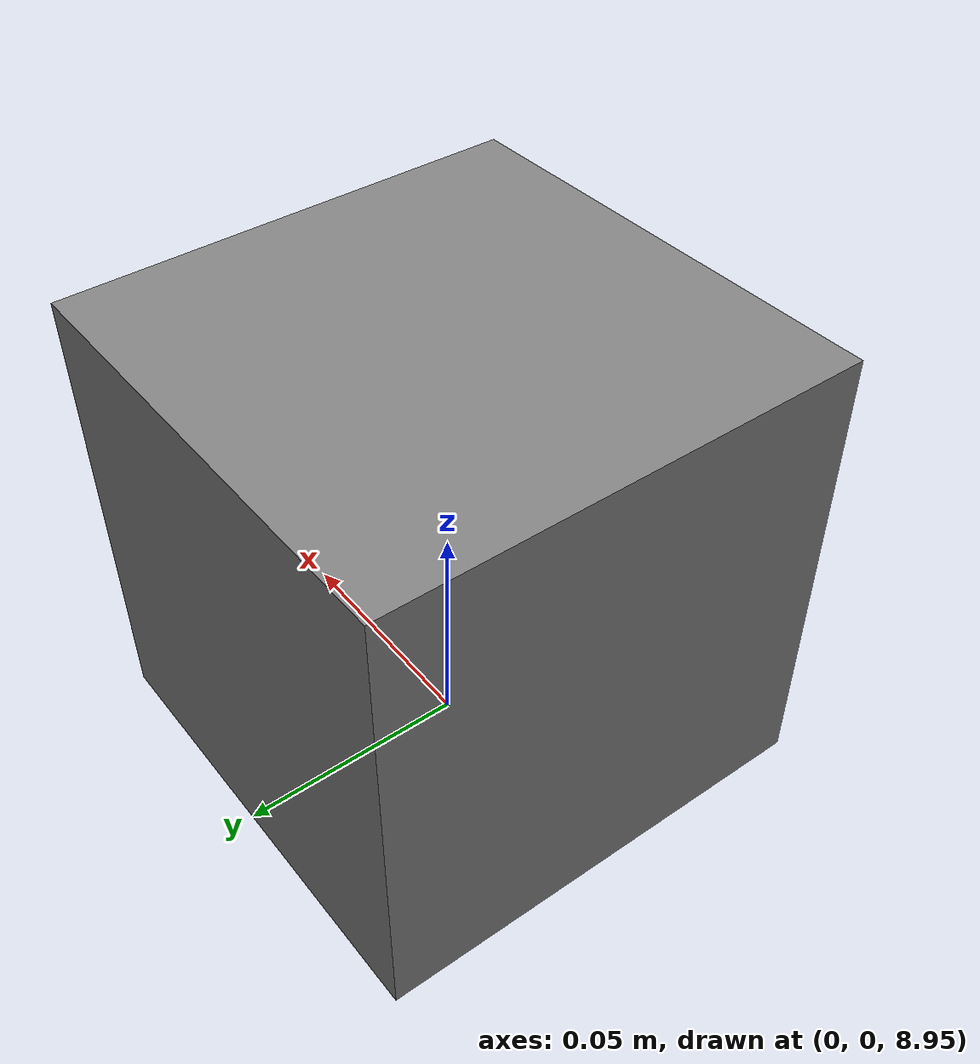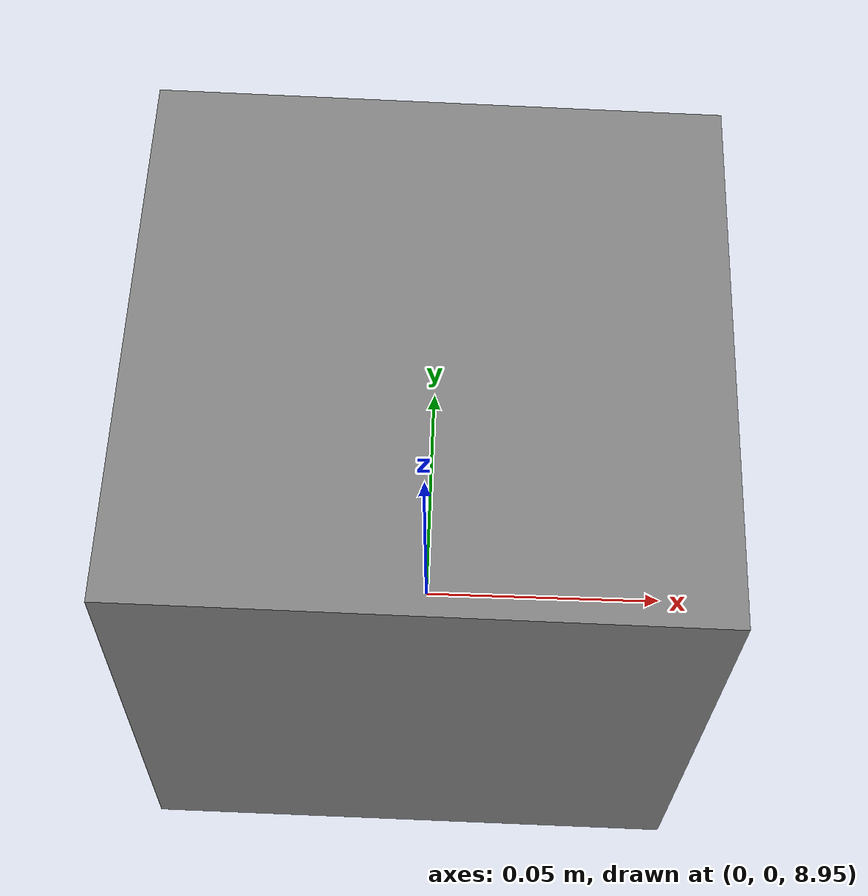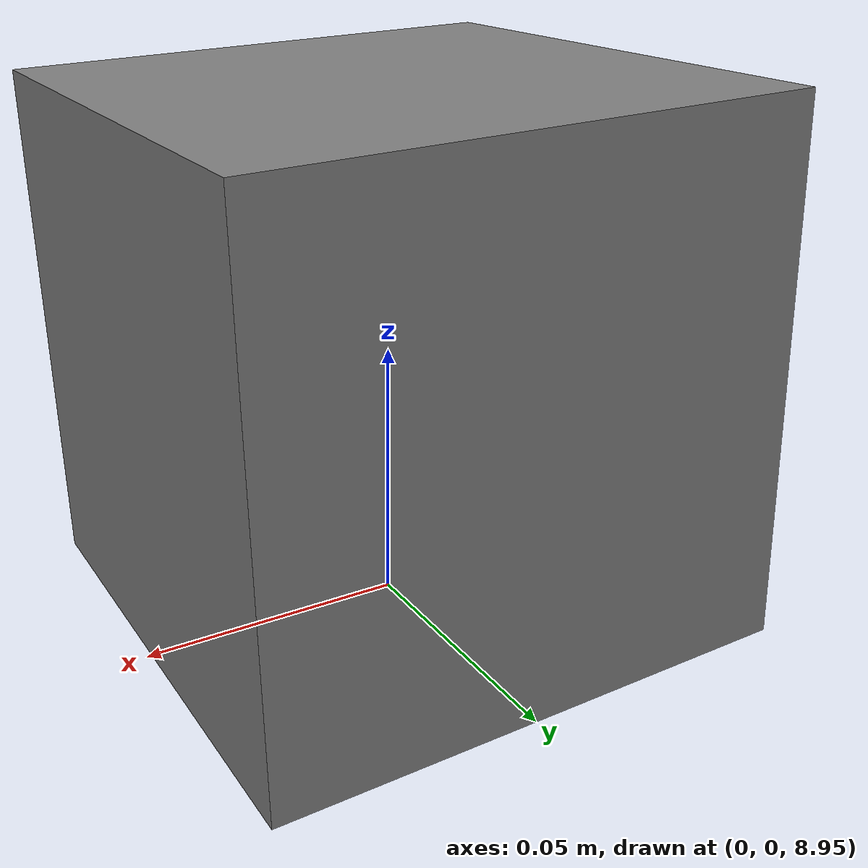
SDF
<sdf version="1.4">
  <world name="default">

    <scene>
      <ambient>0.4 0.4 0.4 1</ambient>
      <background>0.7 0.7 0.7 1</background>
      <shadows>true</shadows>
    </scene>

    <!-- A global light source -->
    <include>
      <uri>model://sun</uri>
    </include>

    <!-- A ground plane -->
    <include>
      <uri>model://ground_plane</uri>
    </include>

    <!-- Model for top view camera -->
    <model name="top_view_camera">
      <pose>0 0 9 0 1.6 0</pose>
      <static>true</static>
      <link name="camera_link">
        <!-- Visual properties of the camera -->
        <visual name="visual">
          <pose>0 0 0 0 0 0</pose>
          <geometry>
            <box>
              <size>0.1 0.1 0.1</size>
            </box>
          </geometry>
          <material>
            <ambient>0.5 0.5 0.5 1</ambient>
            <diffuse>0.5 0.5 0.5 1</diffuse>
            <specular>0.1 0.1 0.1 1</specular>
            <emissive>0 0 0 0</emissive>
          </material>
        </visual>
        <sensor name="camera" type="depth">
        <update_rate>20</update_rate>
        <camera>
          <horizontal_fov>1.047198</horizontal_fov>
          <image>
            <width>640</width>
            <height>480</height>
            <format>R8G8B8</format>
          </image>
          <clip>
            <near>0.05</near>
            <far>30</far>
          </clip>
        </camera>
                <plugin name="camera_plugin" filename="libgazebo_ros_openni_kinect.so">
          <baseline>0.2</baseline>
          <alwaysOn>true</alwaysOn>
          <updateRate>0.0</updateRate>
          <cameraName>camera_ir</cameraName>
          <imageTopicName>/camera/color/image_raw</imageTopicName>
          <cameraInfoTopicName>/camera/color/camera_info</cameraInfoTopicName>
          <depthImageTopicName>/camera/depth/image_raw</depthImageTopicName>
          <depthImageCameraInfoTopicName>/camera/depth/camera_info</depthImageCameraInfoTopicName>
          <pointCloudTopicName>/camera/depth/points</pointCloudTopicName>
          <frameName>camera_link</frameName>
          <pointCloudCutoff>0.5</pointCloudCutoff>
          <pointCloudCutoffMax>3.0</pointCloudCutoffMax>
          <distortionK1>0</distortionK1>
          <distortionK2>0</distortionK2>
          <distortionK3>0</distortionK3>
          <distortionT1>0</distortionT1>
          <distortionT2>0</distortionT2>
          <CxPrime>0</CxPrime>
          <Cx>0</Cx>
          <Cy>0</Cy>
          <focalLength>0</focalLength>
          <hackBaseline>0</hackBaseline>
        </plugin>
      </sensor>
        <!-- Collision properties of the camera -->
      </link>
    </model>

    <!-- Physics definition -->
    <physics type="ode">
      <real_time_update_rate>1000.0</real_time_update_rate>
      <max_step_size>0.001</max_step_size>
      <real_time_factor>1</real_time_factor>
      <ode>
        <solver>
          <type>quick</type>
          <iters>150</iters>
          <precon_iters>0</precon_iters>
          <sor>1.400000</sor>
          <use_dynamic_moi_rescaling>1</use_dynamic_moi_rescaling>
        </solver>
        <constraints>
          <cfm>0.00001</cfm>
          <erp>0.2</erp>
          <contact_max_correcting_vel>2000.000000</contact_max_correcting_vel>
          <contact_surface_layer>0.01000</contact_surface_layer>
        </constraints>
      </ode>
    </physics>
  </world>
</sdf>
